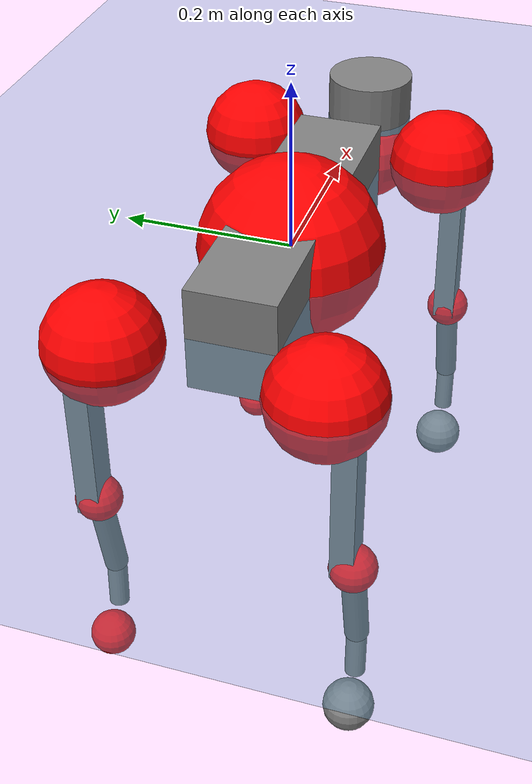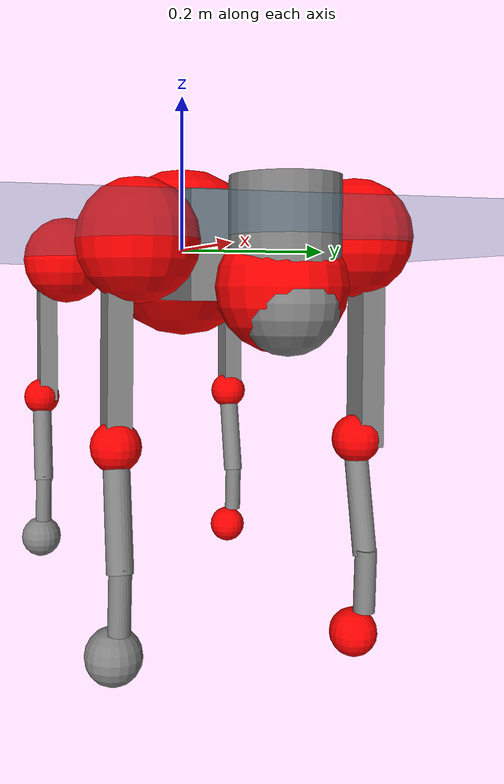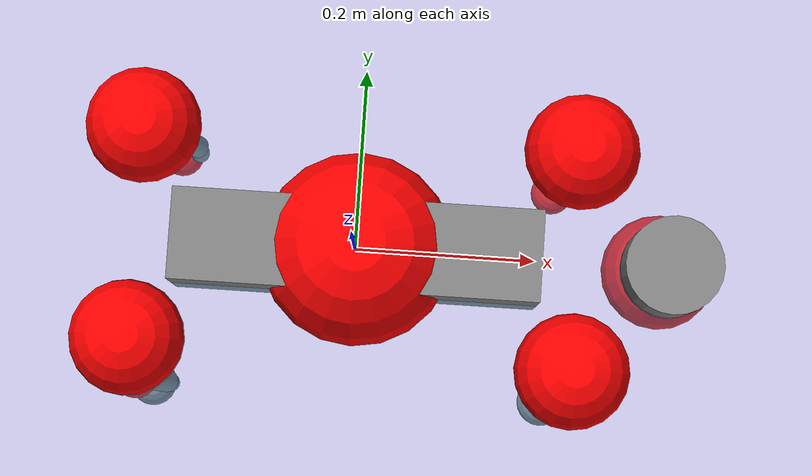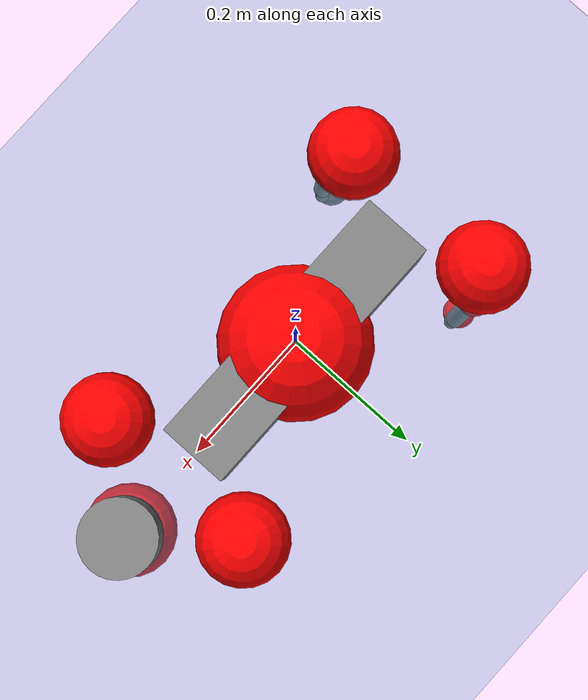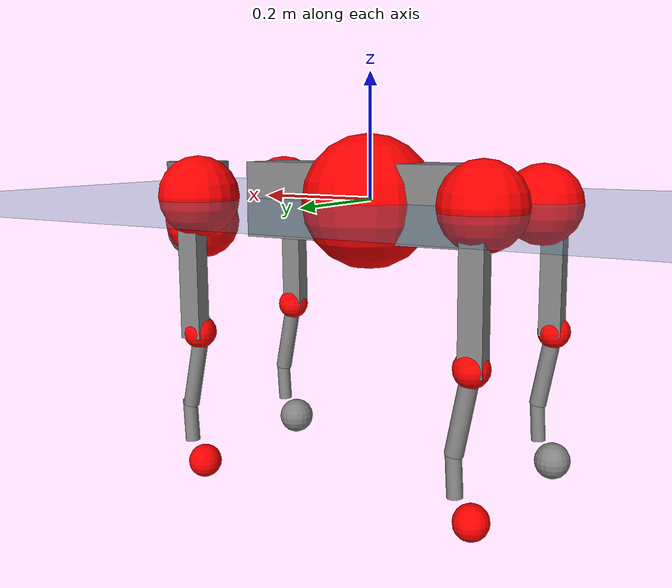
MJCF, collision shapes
<mujoco model="go2">
  <compiler angle="radian" assetdir="assets" balanceinertia="true" inertiafromgeom="false"/>

  <option timestep="0.005" density="1.2" viscosity="2e-05"/>

  <size nkey="1"/>

  <visual>
    <quality shadowsize="8192"/>
    <map shadowclip="0.5"/>
  </visual>

  <default>
    <default class="/">
      <geom contype="0" conaffinity="0" group="1" solref="-1000 -80"/>
      <site size="0.01 0.005 0.005" group="5"/>
      <general forcelimited="true" biastype="affine" gainprm="20" biasprm="0 -20 -0.5"/>
      <default class="go2">
        <joint armature="0.01" damping="0.01" frictionloss="0.2"/>
        <geom condim="1" margin="0.001"/>
        <default class="visual">
          <geom type="mesh" group="2"/>
        </default>
        <default class="collision">
          <geom group="3"/>
          <default class="foot">
            <geom size="0.022 0 0" condim="6" priority="1" friction="0.8 0.02 0.01" solimp="0.015 1 0.022"/>
          </default>
        </default>
        <default class="reward_collision_sphere">
          <geom group="5" rgba="1 0 0 1"/>
        </default>
      </default>
    </default>
  </default>

  <asset>
    <texture type="skybox" colorspace="auto" name="//unnamed_texture_0" builtin="gradient" rgb1="0.95 0.95 0.95" rgb2="0.95 0.95 0.95" width="100" height="600"/>
    <texture type="2d" colorspace="auto" name="texplane" builtin="checker" rgb1="0.345 0.575 0.748" rgb2="0.345 0.575 0.748" markrgb="1 1 1" width="512" height="512"/>
    <material name="MatPlane" class="/" texture="texplane" texuniform="true" texrepeat="2 2" specular="0.9"/>
    <material name="metal" class="/" rgba="0.9 0.95 0.95 1"/>
    <material name="black" class="/" rgba="0 0 0 1"/>
    <material name="white" class="/"/>
    <material name="gray" class="/" rgba="0.671705 0.692426 0.77427 1"/>
    <mesh name="base_0" class="/" file="base_0.obj"/>
    <mesh name="base_1" class="/" file="base_1.obj"/>
    <mesh name="base_2" class="/" file="base_2.obj"/>
    <mesh name="base_3" class="/" file="base_3.obj"/>
    <mesh name="base_4" class="/" file="base_4.obj"/>
    <mesh name="hip_0" class="/" file="hip_0.obj"/>
    <mesh name="hip_1" class="/" file="hip_1.obj"/>
    <mesh name="thigh_0" class="/" file="thigh_0.obj"/>
    <mesh name="thigh_1" class="/" file="thigh_1.obj"/>
    <mesh name="thigh_mirror_0" class="/" file="thigh_mirror_0.obj"/>
    <mesh name="thigh_mirror_1" class="/" file="thigh_mirror_1.obj"/>
    <mesh name="calf_0" class="/" file="calf_0.obj"/>
    <mesh name="calf_1" class="/" file="calf_1.obj"/>
    <mesh name="calf_mirror_0" class="/" file="calf_mirror_0.obj"/>
    <mesh name="calf_mirror_1" class="/" file="calf_mirror_1.obj"/>
    <mesh name="foot" class="/" file="foot.obj"/>
  </asset>

  <worldbody>
    <geom name="floor" class="/" size="100 100 0.125" type="plane" group="0" material="MatPlane"/>
    <light name="toplight_shadow" class="/" pos="0 0 5" dir="0.0990148 0.0990148 -0.990148" type="directional" ambient="0.04 0.04 0.04" diffuse="0.55 0.55 0.55" specular="0.12 0.12 0.12"/>
    <light name="toplight_fill" class="/" pos="0 0 5" dir="0.0990148 0.0990148 -0.990148" type="directional" castshadow="false" ambient="0.04 0.04 0.04" diffuse="0.3 0.3 0.3" specular="0.08 0.08 0.08"/>
    <body name="trunk" childclass="go2" pos="0.00162605 0.000795127 -0.00286611" quat="0.999998 -0.000967055 0.00129747 0.00125361">
      <inertial pos="0.0383868 0.00948898 -0.00169019" quat="0.000737691 0.71703 -0.00325721 0.697035" mass="7.66419" diaginertia="0.299811 0.0933235 0.0292201"/>
      <joint name="//unnamed_joint_0" type="free" armature="0" damping="0" frictionloss="0"/>
      <geom name="//unnamed_geom_1" class="visual" material="black" mesh="base_0"/>
      <geom name="//unnamed_geom_2" class="visual" material="black" mesh="base_1"/>
      <geom name="//unnamed_geom_3" class="visual" material="black" mesh="base_2"/>
      <geom name="//unnamed_geom_4" class="visual" material="white" mesh="base_3"/>
      <geom name="//unnamed_geom_5" class="visual" material="gray" mesh="base_4"/>
      <geom name="trunk_1" class="collision" size="0.203722 0.0506327 0.061734" type="box"/>
      <geom name="trunk_2" class="collision" size="0.0541526 0.0487374" pos="0.348359 0 0.0103527" type="cylinder"/>
      <geom name="trunk_3" class="collision" size="0.0509035" pos="0.358138 0 -0.0621161"/>
      <geom name="//unnamed_geom_9" class="reward_collision_sphere" size="0.108305"/>
      <geom name="//unnamed_geom_10" class="reward_collision_sphere" size="0.0649832" pos="0.342248 0 -0.0465871"/>
      <site name="imu" pos="-0.0844661 0.00223234 0.0967454" size="0.0108305"/>
      <camera name="track" pos="0 -1.98315 0" quat="0.707107 0.707107 0 0" mode="trackcom"/>
      <camera name="ego_camera" pos="0.381362 0 0.0465871" quat="-0.5 -0.5 0.5 0.5"/>
      <body name="FL_hip" pos="0.244533 0.0547213 0.00832864" quat="1 2.00566e-05 0.000212149 -2.45633e-05">
        <inertial pos="-0.00610704 0.00980669 -0.00101787" quat="0.497569 0.49925 0.505417 0.497723" mass="0.935982" diaginertia="0.00284709 0.000732225 0.000664865"/>
        <joint name="FL_hip_joint" pos="0 0 0" axis="0.999715 -0.0237127 -0.00293378" stiffness="0.0329698" range="-1.04387 0.97214" armature="0.0116409" damping="0" frictionloss="0.289227"/>
        <geom name="//unnamed_geom_11" class="visual" material="metal" mesh="hip_0"/>
        <geom name="//unnamed_geom_12" class="visual" material="gray" mesh="hip_1"/>
        <geom name="//unnamed_geom_13" class="collision" size="0.0498204 0.0216611" pos="0 0.0793261 0" quat="0.707107 0.707107 0 0" type="cylinder"/>
        <geom name="//unnamed_geom_14" class="reward_collision_sphere" size="0.0649832" pos="0 0.0694104 0"/>
        <body name="FL_thigh" pos="0.00561969 0.0832749 -0.00499066" quat="0.999987 0.00249754 0.00307903 0.0030642">
          <inertial pos="-0.00272302 -0.0213693 -0.039099" quat="0.828096 0.100468 0.017367 0.551237" mass="1.57606" diaginertia="0.0160185 0.00636075 0.00100433"/>
          <joint name="FL_thigh_joint" pos="0 0 0" axis="-0.00492372 0.999983 0.00313898" range="-1.763 3.35895" armature="0.0117426" damping="0" frictionloss="0.276146"/>
          <geom name="//unnamed_geom_15" class="visual" material="metal" mesh="thigh_0"/>
          <geom name="//unnamed_geom_16" class="visual" material="gray" mesh="thigh_1"/>
          <geom name="//unnamed_geom_17" class="collision" size="0.115345 0.0132674 0.0184119" pos="0 0 -0.110256" quat="0.707107 0 0.707107 0" type="box"/>
          <body name="FL_calf" pos="-0.00146991 -0.00998194 -0.217585" quat="1 0.000331121 -0.000500279 -0.000277281">
            <inertial pos="0.00613468 -0.00142393 -0.14191" quat="0.709257 0.00452532 0.00274556 0.70493" mass="0.313509" diaginertia="0.00454235 0.00142356 6.2809e-05"/>
            <joint name="FL_calf_joint" pos="0 0 0" axis="-0.00087401 1 -0.000369091" stiffness="0.0461186" range="-2.85311 -0.804643" armature="0.00950458" damping="0.0139082" frictionloss="0.234029"/>
            <geom name="//unnamed_geom_18" class="visual" material="gray" mesh="calf_0"/>
            <geom name="//unnamed_geom_19" class="visual" material="black" mesh="calf_1"/>
            <geom name="FL_calf0" class="collision" size="0.0129966 0.0649832" pos="0.00977851 0 -0.0621161" quat="0.994493 0 -0.104807 0" type="cylinder"/>
            <geom name="//unnamed_geom_21" class="collision" size="0.0119136 0.0351992" pos="0.0244463 0 -0.15322" quat="0.999688 0 0.0249974 0" type="cylinder"/>
            <geom name="//unnamed_geom_22" class="visual" pos="0 0 -0.220512" quat="1 0 0 0" material="black" mesh="foot"/>
            <geom name="FL_foot" class="foot" size="0.0259807" pos="-0.00244463 0 -0.220512"/>
            <geom name="//unnamed_geom_24" class="reward_collision_sphere" size="0.0270763"/>
            <geom name="//unnamed_geom_25" class="reward_collision_sphere" size="0.0270763" pos="-0.00244463 0 -0.220512"/>
            <site name="FL_foot" class="foot" pos="-0.00244463 0 -0.220512" size="0.0108305"/>
          </body>
        </body>
      </body>
      <body name="FR_hip" pos="0.247323 -0.051282 0.001351" quat="0.999999 0.000318728 -0.000207653 -0.00122021">
        <inertial pos="-0.000366841 0.0109234 0.00644811" quat="0.519443 0.458632 0.493943 0.52522" mass="0.847227" diaginertia="0.00265515 0.000494751 0.000624214"/>
        <joint name="FR_hip_joint" pos="0 0 0" axis="0.999087 -0.0160864 -0.0395807" range="-1.05126 1.01524" armature="0.0109802" damping="0.044358" frictionloss="0.182613"/>
        <geom name="//unnamed_geom_26" class="visual" pos="0 -3.80622e-10 -1.63257e-08" quat="4.63268e-05 1 0 0" material="metal" mesh="hip_0"/>
        <geom name="//unnamed_geom_27" class="visual" pos="0 -6.17034e-10 4.03797e-08" quat="4.63268e-05 1 0 0" material="gray" mesh="hip_1"/>
        <geom name="//unnamed_geom_28" class="collision" size="0.0498204 0.0216611" pos="0 -0.0793261 0" quat="0.707107 0.707107 0 0" type="cylinder"/>
        <geom name="//unnamed_geom_29" class="reward_collision_sphere" size="0.0649832" pos="0 -0.0694104 0"/>
        <body name="FR_thigh" pos="-0.00526025 -0.0894475 0.00913122" quat="0.99999 -0.00403187 0.00156425 0.00125713">
          <inertial pos="-0.0153607 0.0244191 -0.0283245" quat="0.57015 -0.00691648 0.0960908 0.815872" mass="1.32319" diaginertia="0.0176404 0.00627121 0.000912251"/>
          <joint name="FR_thigh_joint" pos="0 0 0" axis="0.0161763 -0.999774 -0.0137735" range="-3.54793 1.58482" armature="0.0140269" damping="0" frictionloss="0.175974"/>
          <geom name="//unnamed_geom_30" class="visual" material="metal" mesh="thigh_mirror_0"/>
          <geom name="//unnamed_geom_31" class="visual" material="gray" mesh="thigh_mirror_1"/>
          <geom name="//unnamed_geom_32" class="collision" size="0.115345 0.0132674 0.0184119" pos="0 0 -0.110256" quat="0.707107 0 0.707107 0" type="box"/>
          <body name="FR_calf" pos="0.0056652 -0.00134381 -0.221889" quat="0.999996 -0.00141824 -0.0023728 -0.00016225">
            <inertial pos="0.0157222 0.000664637 -0.146026" quat="0.721728 -0.0257191 -0.0449343 0.690237" mass="0.255544" diaginertia="0.00348157 0.00132528 5.75989e-05"/>
            <joint name="FR_calf_joint" pos="0 0 0" axis="0.00491584 -0.999613 0.0273711" stiffness="0.0526438" range="1.05666 2.83991" armature="0.00587105" damping="0" frictionloss="0.171766"/>
            <geom name="//unnamed_geom_33" class="visual" material="gray" mesh="calf_mirror_0"/>
            <geom name="//unnamed_geom_34" class="visual" material="black" mesh="calf_mirror_1"/>
            <geom name="FR_calf0" class="collision" size="0.0140797 0.0649832" pos="0.0122231 0 -0.0621161" quat="0.995004 0 -0.0998334 0" type="cylinder"/>
            <geom name="//unnamed_geom_36" class="collision" size="0.0119136 0.0351992" pos="0.0244463 0 -0.15322" quat="0.999688 0 0.0249974 0" type="cylinder"/>
            <geom name="//unnamed_geom_37" class="visual" pos="0 0 -0.220512" quat="1 0 0 0" material="black" mesh="foot"/>
            <geom name="FR_foot" class="foot" size="0.0310908" pos="-0.00244463 0 -0.220512"/>
            <geom name="//unnamed_geom_39" class="reward_collision_sphere" size="0.0270763"/>
            <geom name="//unnamed_geom_40" class="reward_collision_sphere" size="0.0270763" pos="-0.00244463 0 -0.220512"/>
            <site name="FR_foot" class="foot" pos="-0.00244463 0 -0.220512" size="0.0108305"/>
          </body>
        </body>
      </body>
      <body name="RL_hip" pos="-0.24612 0.0530407 0.00967668" quat="0.999999 0.000712815 0.000857569 0.000271573">
        <inertial pos="0.00665833 -0.00498956 0.0113817" quat="0.525289 0.500487 0.508185 0.464038" mass="0.743733" diaginertia="0.00174501 0.000499222 0.000523887"/>
        <joint name="RL_hip_joint" pos="0 0 0" axis="-0.999113 -0.0380216 -0.0180714" stiffness="0.0197436" range="-1.07631 0.988501" armature="0.0100215" damping="0.0589746" frictionloss="0.217891"/>
        <geom name="//unnamed_geom_41" class="visual" pos="-1.62947e-09 0 -3.19413e-07" quat="4.63268e-05 0 1 0" material="metal" mesh="hip_0"/>
        <geom name="//unnamed_geom_42" class="visual" pos="-2.64156e-09 0 -2.83274e-07" quat="4.63268e-05 0 1 0" material="gray" mesh="hip_1"/>
        <geom name="//unnamed_geom_43" class="collision" size="0.0498204 0.0216611" pos="0 0.0793261 0" quat="0.707107 0.707107 0 0" type="cylinder"/>
        <geom name="//unnamed_geom_44" class="reward_collision_sphere" size="0.0649832" pos="0 0.0694104 0"/>
        <body name="RL_thigh" pos="-0.0010288 0.0982854 -0.00430072" quat="0.999999 0.00106355 0.000680223 0.000971515">
          <inertial pos="0.00799605 -0.0248487 -0.0224715" quat="0.829082 0.0827496 -0.0274478 0.552288" mass="1.66593" diaginertia="0.0203429 0.00555748 0.00109345"/>
          <joint name="RL_thigh_joint" pos="0 0 0" axis="0.00754819 0.999754 -0.0208424" range="-0.426886 4.66991" armature="0.0103489" damping="0.046965" frictionloss="0.213202"/>
          <geom name="//unnamed_geom_45" class="visual" material="metal" mesh="thigh_0"/>
          <geom name="//unnamed_geom_46" class="visual" material="gray" mesh="thigh_1"/>
          <geom name="//unnamed_geom_47" class="collision" size="0.115345 0.0132674 0.0184119" pos="0 0 -0.110256" quat="0.707107 0 0.707107 0" type="box"/>
          <body name="RL_calf" pos="0.00356926 -0.00359088 -0.216774" quat="1 -0.000102304 -4.23235e-05 6.09811e-05">
            <inertial pos="0.00284039 -0.010333 -0.143859" quat="0.726212 0.0164445 -0.0195805 0.686995" mass="0.257191" diaginertia="0.00370922 0.00104058 5.16067e-05"/>
            <joint name="RL_calf_joint" pos="0 0 0" axis="-0.00511966 0.999962 0.0070302" range="-2.90972 -0.697428" armature="0.00515039" damping="0" frictionloss="0.312208"/>
            <geom name="//unnamed_geom_48" class="visual" material="gray" mesh="calf_0"/>
            <geom name="//unnamed_geom_49" class="visual" material="black" mesh="calf_1"/>
            <geom name="RL_calf0" class="collision" size="0.0140797 0.0649832" pos="0.0122231 0 -0.0621161" quat="0.995004 0 -0.0998334 0" type="cylinder"/>
            <geom name="//unnamed_geom_51" class="collision" size="0.0119136 0.0351992" pos="0.0244463 0 -0.15322" quat="0.999688 0 0.0249974 0" type="cylinder"/>
            <geom name="//unnamed_geom_52" class="visual" pos="0 0 -0.220512" quat="1 0 0 0" material="black" mesh="foot"/>
            <geom name="RL_foot" class="foot" size="0.0206176" pos="-0.00244463 0 -0.220512"/>
            <geom name="//unnamed_geom_54" class="reward_collision_sphere" size="0.0270763"/>
            <geom name="//unnamed_geom_55" class="reward_collision_sphere" size="0.0270763" pos="-0.00244463 0 -0.220512"/>
            <site name="RL_foot" class="foot" pos="-0.00244463 0 -0.220512" size="0.0108305"/>
          </body>
        </body>
      </body>
      <body name="RR_hip" pos="-0.249009 -0.0450421 -0.00371454" quat="1 -0.000189159 0.000354908 0.000357549">
        <inertial pos="0.0124348 -0.00708645 0.0111017" quat="0.476306 0.540834 0.512802 0.466547" mass="0.883375" diaginertia="0.00280329 0.000671843 0.000655197"/>
        <joint name="RR_hip_joint" pos="0 0 0" axis="-0.998641 -0.0492342 0.0171149" stiffness="0.00525164" range="-0.848809 0.946214" armature="0.0128568" damping="0.0341078" frictionloss="0.216835"/>
        <geom name="//unnamed_geom_56" class="visual" pos="1.62148e-09 -3.80622e-10 -3.03087e-07" quat="2.14617e-09 4.63268e-05 4.63268e-05 -1" material="metal" mesh="hip_0"/>
        <geom name="//unnamed_geom_57" class="visual" pos="2.66132e-09 -6.17034e-10 -3.23653e-07" quat="2.14617e-09 4.63268e-05 4.63268e-05 -1" material="gray" mesh="hip_1"/>
        <geom name="//unnamed_geom_58" class="collision" size="0.0498204 0.0216611" pos="0 -0.0793261 0" quat="0.707107 0.707107 0 0" type="cylinder"/>
        <geom name="//unnamed_geom_59" class="reward_collision_sphere" size="0.0649832" pos="0 -0.0694104 0"/>
        <body name="RR_thigh" pos="-0.011503 -0.0979663 0.0099088" quat="0.99999 0.000886574 -0.00186441 -0.00404617">
          <inertial pos="-0.00324832 0.0164009 -0.0351736" quat="0.553811 -0.0212204 0.0867344 0.827841" mass="1.73084" diaginertia="0.0192201 0.00596509 0.00112285"/>
          <joint name="RR_thigh_joint" pos="0 0 0" axis="-0.00123349 -0.999991 0.00403629" range="-4.65436 0.569919" armature="0.0110885" damping="0" frictionloss="0.202847"/>
          <geom name="//unnamed_geom_60" class="visual" material="metal" mesh="thigh_mirror_0"/>
          <geom name="//unnamed_geom_61" class="visual" material="gray" mesh="thigh_mirror_1"/>
          <geom name="//unnamed_geom_62" class="collision" size="0.115345 0.0132674 0.0184119" pos="0 0 -0.110256" quat="0.707107 0 0.707107 0" type="box"/>
          <body name="RR_calf" pos="-0.0013174 -0.00873053 -0.220487" quat="0.999986 -0.00414631 0.00336422 -5.05932e-05">
            <inertial pos="-0.000914814 0.0047112 -0.148287" quat="0.676817 -0.0157145 -0.00948155 0.735923" mass="0.29366" diaginertia="0.00421262 0.00139546 6.74474e-05"/>
            <joint name="RR_calf_joint" pos="0 0 0" axis="-0.0232014 -0.999694 -0.00853634" range="0.860309 2.51998" armature="0.0111213" damping="0" frictionloss="0.172597"/>
            <geom name="//unnamed_geom_63" class="visual" material="gray" mesh="calf_mirror_0"/>
            <geom name="//unnamed_geom_64" class="visual" material="black" mesh="calf_mirror_1"/>
            <geom name="RR_calf0" class="collision" size="0.0140797 0.0649832" pos="0.0122231 0 -0.0621161" quat="0.995004 0 -0.0998334 0" type="cylinder"/>
            <geom name="//unnamed_geom_66" class="collision" size="0.0119136 0.0351992" pos="0.0244463 0 -0.15322" quat="0.999688 0 0.0249974 0" type="cylinder"/>
            <geom name="//unnamed_geom_67" class="visual" pos="0 0 -0.220512" quat="1 0 0 0" material="black" mesh="foot"/>
            <geom name="RR_foot" class="foot" size="0.0300795" pos="-0.00244463 0 -0.220512"/>
            <geom name="//unnamed_geom_69" class="reward_collision_sphere" size="0.0270763"/>
            <geom name="//unnamed_geom_70" class="reward_collision_sphere" size="0.0270763" pos="-0.00244463 0 -0.220512"/>
            <site name="RR_foot" class="foot" pos="-0.00244463 0 -0.220512" size="0.0108305"/>
          </body>
        </body>
      </body>
    </body>
  </worldbody>

  <contact>
    <pair class="/" geom1="floor" geom2="FL_foot" name="//unnamed_contact_0"/>
    <pair class="/" geom1="floor" geom2="FR_foot" name="//unnamed_contact_1"/>
    <pair class="/" geom1="floor" geom2="RL_foot" name="//unnamed_contact_2"/>
    <pair class="/" geom1="floor" geom2="RR_foot" name="//unnamed_contact_3"/>
  </contact>

  <actuator>
    <general name="FL_hip" class="/" joint="FL_hip_joint" forcerange="-33.4975 33.4975" gainprm="24.6608" biasprm="0 -24.6608 -0.615057"/>
    <general name="FL_thigh" class="/" joint="FL_thigh_joint" forcerange="-36.4487 36.4487" gainprm="24.6608" biasprm="0 -24.6608 -0.615057"/>
    <general name="FL_calf" class="/" joint="FL_calf_joint" forcerange="-54.2389 54.2389" gainprm="24.6608" biasprm="0 -24.6608 -0.615057"/>
    <general name="FR_hip" class="/" joint="FR_hip_joint" forcerange="-27.2125 27.2125" gainprm="24.6608" biasprm="0 -24.6608 -0.615057"/>
    <general name="FR_thigh" class="/" joint="FR_thigh_joint" forcerange="-18.7626 18.7626" gainprm="24.6608" biasprm="0 -24.6608 -0.615057"/>
    <general name="FR_calf" class="/" joint="FR_calf_joint" forcerange="-50.5028 50.5028" gainprm="24.6608" biasprm="0 -24.6608 -0.615057"/>
    <general name="RL_hip" class="/" joint="RL_hip_joint" forcerange="-24.5572 24.5572" gainprm="24.6608" biasprm="0 -24.6608 -0.615057"/>
    <general name="RL_thigh" class="/" joint="RL_thigh_joint" forcerange="-32.9725 32.9725" gainprm="24.6608" biasprm="0 -24.6608 -0.615057"/>
    <general name="RL_calf" class="/" joint="RL_calf_joint" forcerange="-43.635 43.635" gainprm="24.6608" biasprm="0 -24.6608 -0.615057"/>
    <general name="RR_hip" class="/" joint="RR_hip_joint" forcerange="-25.5604 25.5604" gainprm="24.6608" biasprm="0 -24.6608 -0.615057"/>
    <general name="RR_thigh" class="/" joint="RR_thigh_joint" forcerange="-16.6441 16.6441" gainprm="24.6608" biasprm="0 -24.6608 -0.615057"/>
    <general name="RR_calf" class="/" joint="RR_calf_joint" forcerange="-47.411 47.411" gainprm="24.6608" biasprm="0 -24.6608 -0.615057"/>
  </actuator>

  <sensor>
    <gyro site="imu" name="imu_angular_velocity"/>
    <velocimeter site="imu" name="imu_linear_velocity"/>
    <framelinvel objtype="site" objname="FL_foot" name="FL_foot_global_linear_velocity"/>
    <framelinvel objtype="site" objname="FR_foot" name="FR_foot_global_linear_velocity"/>
    <framelinvel objtype="site" objname="RL_foot" name="RL_foot_global_linear_velocity"/>
    <framelinvel objtype="site" objname="RR_foot" name="RR_foot_global_linear_velocity"/>
  </sensor>

  <keyframe>
    <key name="home" qpos="0 0 0.325 1 0 0 0 0.1 0.8 -1.5 -0.1 -0.8 1.5 -0.1 0.8 -1.5 0.1 -0.8 1.5"/>
  </keyframe>
</mujoco>
